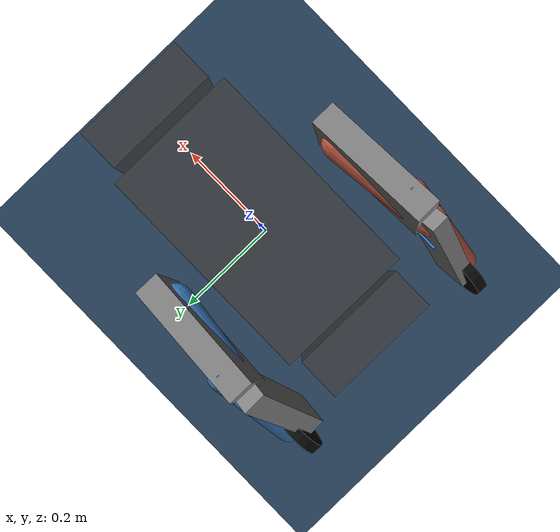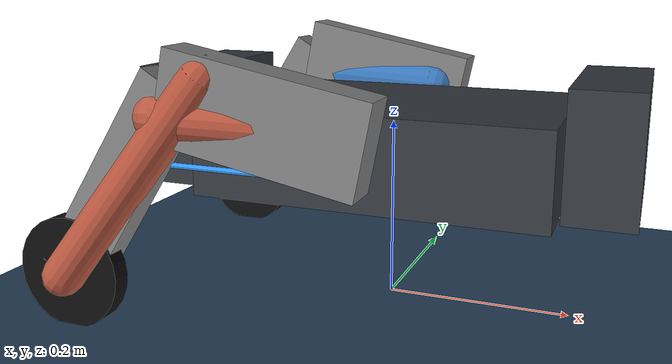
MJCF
<mujoco model="serialleg_openchain_direct_actuator">
  <compiler angle="radian" autolimits="true" />
  <option timestep="0.005" solver="Newton" cone="pyramidal" />
  <visual>
    <global offwidth="1280" offheight="720" />
  </visual>
  <default>
    <geom solref="0.004 1.5" solimp="0.85 0.99 0.005" />
    <joint damping="0" />
  </default>
  <asset>
    <texture name="grid" type="2d" builtin="checker" width="512" height="512" rgb1=".1 .2 .3" rgb2=".2 .3 .4" />
    <material name="grid" texture="grid" texrepeat="1 1" texuniform="true" reflectance=".2" />
    <material name="base" rgba="0.20 0.22 0.24 1" />
    <material name="left_leg" rgba="0.22 0.46 0.72 1" />
    <material name="right_leg" rgba="0.72 0.34 0.25 1" />
    <material name="wheel" rgba="0.05 0.05 0.05 1" />
  </asset>
  <worldbody>
    <geom name="floor" type="plane" size="0 0 .05" material="grid" friction="0.8 0.005 0.0001" contype="2" conaffinity="1" />
    <light name="spotlight" mode="targetbodycom" target="base_link" diffuse=".8 .8 .8" specular="0.3 0.3 0.3" pos="0 -6 4" cutoff="30" />
    <body name="base_link" pos="0 0 0.22">
      <site name="fourbar_surrogate_marker" pos="0 0 0" size="0.001" group="5" />
      <site name="imu" pos="-0.0178 0.0131 -0.0334" size="0.005" group="4" />
      <site name="base_contact_site" type="box" pos="0 0 -0.045" size="0.285 0.135 0.075" group="4" />
      <freejoint />
      <inertial pos="-0.01780372 0.01307697 -0.03342401" mass="10.74541262" fullinertia="0.14395729 0.21248062 0.30929562 -0.00229101 0.00807199 -0.00039793" />
      <geom name="base_link_visual_core" type="box" pos="0 0 -0.045" size="0.190 0.115 0.050" material="base" contype="0" conaffinity="0" group="1" />
      <geom name="base_link_visual_front" type="box" pos="0.230 0 -0.025" size="0.035 0.095 0.065" material="base" contype="0" conaffinity="0" group="1" />
      <geom name="base_link_visual_rear" type="box" pos="-0.230 0 -0.025" size="0.035 0.095 0.065" material="base" contype="0" conaffinity="0" group="1" />
      <geom name="base_link_collision_core" type="box" pos="0 0 -0.045" size="0.190 0.115 0.050" group="0" contype="1" conaffinity="2" />
      <geom name="base_link_collision_front" type="box" pos="0.230 0 -0.025" size="0.035 0.095 0.065" group="0" contype="1" conaffinity="2" />
      <geom name="base_link_collision_rear" type="box" pos="-0.230 0 -0.025" size="0.035 0.095 0.065" group="0" contype="1" conaffinity="2" />
      <body name="lf0_Link" pos="0 0.16885 0">
        <joint name="lf0_Joint" type="hinge" axis="0 1 0" armature="0.01" limited="false" />
        <inertial pos="-0.09968276 0.00404879 0.00282013" mass="0.32242010" fullinertia="0.00013496 0.00177872 0.00170006 0.00007976 0.00009393 -0.00000238" />
        <geom name="lf0_Link_visual" type="capsule" fromto="0 0 0 -0.17993464 0.0215 0.00489576" size="0.025" material="left_leg" contype="0" conaffinity="0" group="1" />
        <site name="lf_thigh_end" pos="-0.17993464 0.0215 0.00489576" size="0.008" rgba="1 0 0 1" />
        <site name="l_spring_p1" pos="0.00705 0.00497702 -0.04678497" group="4" />
        <site name="lf0_contact_site" type="box" pos="-0.0687901 0.0116388 0.00794337" size="0.030 0.055 0.115" group="4" />
        <geom name="lf0_Link_collision_obb_trim" type="box" pos="-0.0687901 0.0116388 0.00794337" size="0.0210477 0.0475702 0.106286" quat="0.543139 0.444821 -0.45277 -0.549667" group="0" contype="1" conaffinity="2" />
        <body name="lf1_Link" pos="-0.12990117 0.0215 0.04639203">
          <joint name="lf1_Joint" type="hinge" pos="-0.05003347 0 -0.04149627" axis="0 1 0" damping="1" armature="0.02" limited="true" range="-1.360263693761 0" />
          <inertial pos="-0.04177153 -0.00094144 -0.06569666" mass="0.32184046" fullinertia="0.00126318 0.00185755 0.00061944 0.00000296 -0.00076497 0.00001136" />
          <geom name="lf1_Link_visual" type="capsule" fromto="0 0 0 -0.15699 0.02705 -0.21049" size="0.022" material="left_leg" contype="0" conaffinity="0" group="1" />
          <site name="lf_calf_closure" pos="-0.05003347 0 -0.04149627" size="0.008" rgba="0 1 0 1" />
          <site name="lf_coupler_closure" pos="0 0 0" size="0.008" rgba="0 0.7 1 1" />
          <site name="l_spring_p2" pos="-0.09034883 -0.01652298 -0.09317700" group="4" />
          <site name="lf1_contact_site" type="box" pos="-0.0968146 -0.00854998 -0.11303" size="0.028 0.040 0.130" group="4" />
          <geom name="lf1_Link_collision_obb_trim" type="box" pos="-0.0968146 -0.00854998 -0.11303" size="0.0191449 0.0319916 0.12124" quat="0.187944 -0.678689 -0.681734 0.198235" group="0" contype="1" conaffinity="2" />
          <body name="l_wheel_Link" pos="-0.15699 0.02705 -0.21049">
            <joint name="l_wheel_Joint" type="hinge" axis="0 1 0" armature="0.005" />
            <inertial pos="-0.00007447 -0.00660229 -0.00008940" mass="0.27783378" fullinertia="0.00026503 0.00048080 0.00026516 -0.00000020 0.00000031 -0.00000025" />
            <site name="l_wheel_contact_site" type="ellipsoid" pos="0 -0.015925 0" size="0.066 0.016 0.066" group="4" />
            <geom name="l_wheel_Link_visual" type="cylinder" size="0.060 0.010" pos="0 -0.015925 0" euler="1.5708 0 0" material="wheel" contype="0" conaffinity="0" group="1" />
            <geom name="l_wheel_Link_collision_0" type="cylinder" size="0.060 0.010" pos="0 -0.015925 0" euler="1.5708 0 0" group="0" contype="1" conaffinity="2" friction="0.8 0.005 0.0001" />
          </body>
        </body>
      </body>
      <body name="rf0_Link" pos="0 -0.16885 0">
        <joint name="rf0_Joint" type="hinge" axis="0 -1 0" armature="0.01" limited="false" />
        <inertial pos="-0.09968276 -0.00404879 0.00282013" mass="0.32242010" fullinertia="0.00013496 0.00177872 0.00170006 -0.00007976 0.00009393 0.00000238" />
        <geom name="rf0_Link_visual" type="capsule" fromto="0 0 0 -0.179935 -0.0200 0.004896" size="0.025" material="right_leg" contype="0" conaffinity="0" group="1" />
        <site name="rf_thigh_end" pos="-0.179935 -0.0200 0.004896" size="0.008" rgba="1 0 0 1" />
        <site name="r_spring_p1" pos="0.00705 -0.00497702 -0.04678497" group="4" />
        <site name="rf0_contact_site" type="box" pos="-0.0687901 -0.0116388 0.00794337" size="0.030 0.055 0.115" group="4" />
        <geom name="rf0_Link_collision_obb_trim" type="box" pos="-0.0687901 -0.0116388 0.00794337" size="0.0210477 0.0475702 0.106286" quat="0.549667 0.45277 -0.444821 -0.543139" group="0" contype="1" conaffinity="2" />
        <body name="rf1_Link" pos="-0.12990153 -0.0200 0.04639227">
          <joint name="rf1_Joint" type="hinge" pos="-0.05003347 0 -0.04149627" axis="0 -1 0" damping="1" armature="0.02" limited="true" range="0 1.360263693761" />
          <inertial pos="-0.04177153 0.00094144 -0.06569666" mass="0.32184046" fullinertia="0.00126318 0.00185755 0.00061944 -0.00000296 -0.00076497 -0.00001136" />
          <geom name="rf1_Link_visual" type="capsule" fromto="0 0 0 -0.15699 -0.02705 -0.21049" size="0.022" material="right_leg" contype="0" conaffinity="0" group="1" />
          <site name="rf_calf_closure" pos="-0.05003347 0 -0.04149627" size="0.008" rgba="0 1 0 1" />
          <site name="rf_coupler_closure" pos="0 0 0" size="0.008" rgba="0 0.7 1 1" />
          <site name="r_spring_p2" pos="-0.09034883 0.01502298 -0.09317700" group="4" />
          <site name="rf1_contact_site" type="box" pos="-0.0967442 -0.00127326 -0.112917" size="0.025 0.040 0.130" group="4" />
          <geom name="rf1_Link_collision_obb_trim" type="box" pos="-0.0967442 -0.00127326 -0.112917" size="0.0148243 0.0319988 0.121621" quat="0.207012 0.684465 -0.67571 -0.17908" group="0" contype="1" conaffinity="2" />
          <body name="r_wheel_Link" pos="-0.15699 -0.02705 -0.21049">
            <joint name="r_wheel_Joint" type="hinge" axis="0 -1 0" armature="0.005" />
            <inertial pos="-0.00007447 0.00660229 -0.00008940" mass="0.27783378" fullinertia="0.00026503 0.00048080 0.00026516 0.00000020 0.00000031 0.00000025" />
            <site name="r_wheel_contact_site" type="ellipsoid" pos="0 0.015925 0" size="0.066 0.016 0.066" group="4" />
            <geom name="r_wheel_Link_visual" type="cylinder" size="0.060 0.010" pos="0 0.015925 0" euler="1.5708 0 0" material="wheel" contype="0" conaffinity="0" group="1" />
            <geom name="r_wheel_Link_collision_0" type="cylinder" size="0.060 0.010" pos="0 0.015925 0" euler="1.5708 0 0" group="0" contype="1" conaffinity="2" friction="0.8 0.005 0.0001" />
          </body>
        </body>
      </body>
    </body>
  </worldbody>
  <tendon>
    <spatial name="l_knee_spring" width="0.003" rgba="0.2 0.6 1 1">
      <site site="l_spring_p1" />
      <site site="l_spring_p2" />
    </spatial>
    <spatial name="r_knee_spring" width="0.003" rgba="0.2 0.6 1 1">
      <site site="r_spring_p1" />
      <site site="r_spring_p2" />
    </spatial>
  </tendon>
  <actuator>
    <position name="lf0_Joint_pos" joint="lf0_Joint" kp="40" kv="2" ctrllimited="true" ctrlrange="-1.2 1.2" forcelimited="true" forcerange="-40 40" />
    <position name="lf1_Joint_pos" joint="lf1_Joint" kp="40" kv="2" ctrllimited="true" ctrlrange="-1.360263693761 0" forcelimited="true" forcerange="-40 40" />
    <velocity name="l_wheel_Joint_vel" joint="l_wheel_Joint" kv="0.5" ctrllimited="true" ctrlrange="-45 45" forcelimited="true" forcerange="-2.210526315789 2.210526315789" />
    <position name="rf0_Joint_pos" joint="rf0_Joint" kp="40" kv="2" ctrllimited="true" ctrlrange="-1.2 1.2" forcelimited="true" forcerange="-40 40" />
    <position name="rf1_Joint_pos" joint="rf1_Joint" kp="40" kv="2" ctrllimited="true" ctrlrange="0 1.360263693761" forcelimited="true" forcerange="-40 40" />
    <velocity name="r_wheel_Joint_vel" joint="r_wheel_Joint" kv="0.5" ctrllimited="true" ctrlrange="-45 45" forcelimited="true" forcerange="-2.210526315789 2.210526315789" />
  </actuator>
  <sensor>
    <gyro name="gyro" site="imu" />
    <velocimeter name="local_linvel" site="imu" />
    <framezaxis name="upvector" objtype="site" objname="imu" />
    <subtreeangmom name="robot_subtree_angmom" body="base_link" />
    <framepos name="track_pos_w_l_wheel_Link" objtype="body" objname="l_wheel_Link" />
    <framepos name="track_pos_w_r_wheel_Link" objtype="body" objname="r_wheel_Link" />
    <contact name="base_contact" geom1="floor" body2="base_link" num="1" data="force" reduce="netforce" />
    <contact name="l_wheel_contact" geom1="floor" body2="l_wheel_Link" num="1" data="force" reduce="netforce" />
    <contact name="r_wheel_contact" geom1="floor" body2="r_wheel_Link" num="1" data="force" reduce="netforce" />
    <contact name="lf0_contact" geom1="floor" body2="lf0_Link" num="1" data="force" reduce="netforce" />
    <contact name="lf1_contact" geom1="floor" body2="lf1_Link" num="1" data="force" reduce="netforce" />
    <contact name="rf0_contact" geom1="floor" body2="rf0_Link" num="1" data="force" reduce="netforce" />
    <contact name="rf1_contact" geom1="floor" body2="rf1_Link" num="1" data="force" reduce="netforce" />
  </sensor>
  <keyframe>
    <key name="home" qpos="0 0 0.22 1 0 0 0 -0.275422946189 -1.242259649307 0 0.275422946189 1.242259649307 0" ctrl="-0.275422946189 -1.242259649307 0 0.275422946189 1.242259649307 0" />
    <key name="standing" qpos="0 0 0.22 1 0 0 0 -0.275422946189 -1.242259649307 0 0.275422946189 1.242259649307 0" ctrl="-0.275422946189 -1.242259649307 0 0.275422946189 1.242259649307 0" />
  </keyframe>
</mujoco>
